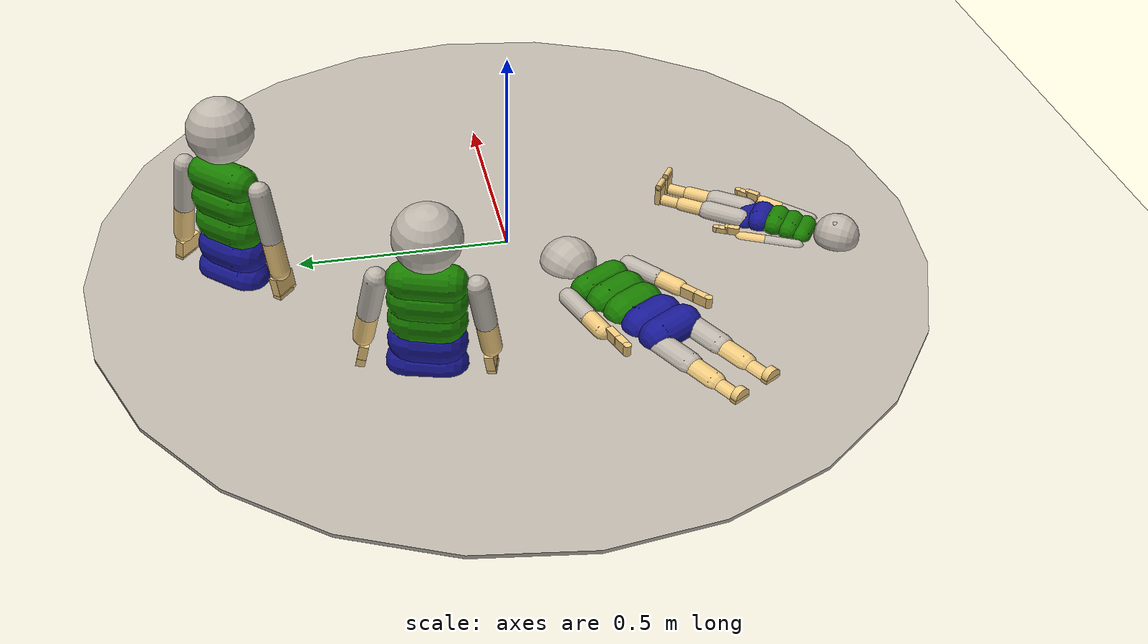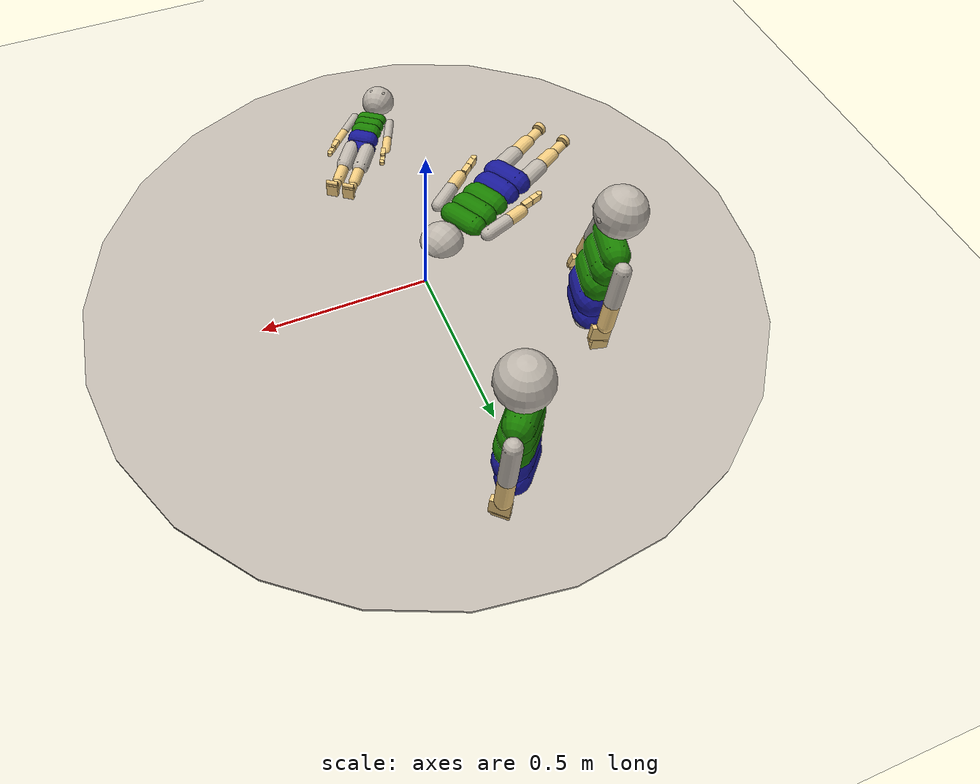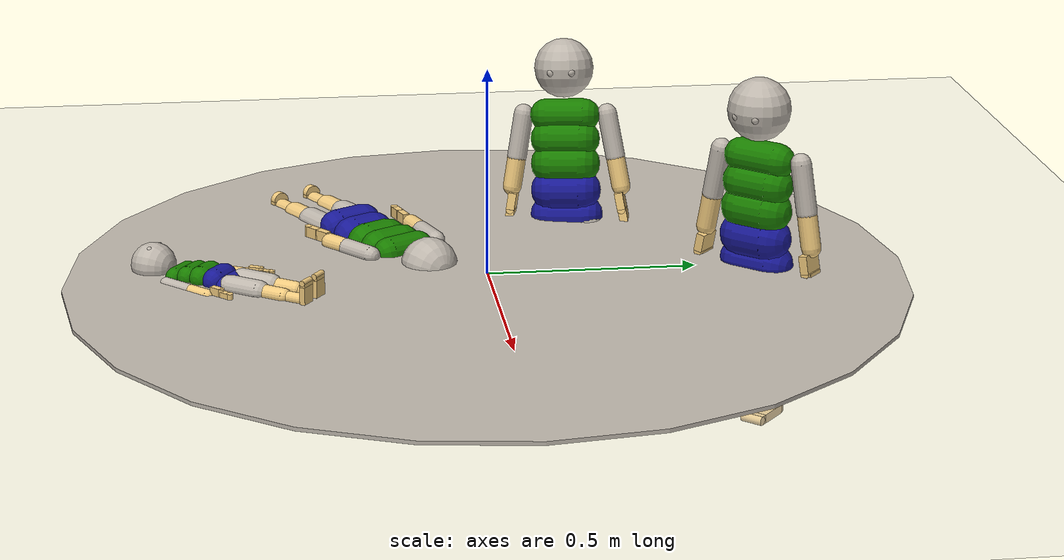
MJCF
<mujoco model="MIMo">

    <compiler inertiafromgeom="true" angle="degree" />
    <option timestep="0.005" iterations="50" tolerance="1e-10" solver="Newton" jacobian="dense" cone="elliptic" impratio="1.0" />
    <size nconmax="1000" njmax="5000" nstack="10000000" />

    <visual>
        <map force="0.1" fogend="10" shadowclip="3" />
        <headlight active="0" />
        <quality shadowsize="0" />
		<global offwidth="1920" offheight="1080"/>
    </visual>

    <default>
		<default class="mimo">
        	<joint limited="true" damping=".1" stiffness=".1" armature="0.001" solimplimit="0.98 0.99 0.001 .5 1" solreflimit="0.02 1" />
        	<geom condim="3" material="skin" friction="1 0.005 0.0002" solimp="0.95 0.99 0.001 0.5 1" solref="0.005 1" />
        	<motor ctrlrange="-1 1" ctrllimited="true" forcelimited="true" />
		</default>
    </default>

    <asset>

		<!-- MIMo. -->
		<texture name="tex_head_default" type="cube" fileright="tex/head_front.png" fileleft="tex/head_back.png" fileup="tex/head_left.png" filedown="tex/head_right.png" filefront="tex/head_top.png" rgb1="0.95 .8 .5" />
		<texture name="tex_head_happy" type="cube" fileright="tex/head_front_happy.png" fileleft="tex/head_back.png" fileup="tex/head_left.png" filedown="tex/head_right.png" filefront="tex/head_top.png" rgb1="0.95 .8 .5" />
		<texture name="tex_head_sad" type="cube" fileright="tex/head_front_sad.png" fileleft="tex/head_back.png" fileup="tex/head_left.png" filedown="tex/head_right.png" filefront="tex/head_top.png" rgb1="0.95 .8 .5" />
		<texture name="tex_head_surprised" type="cube" fileright="tex/head_front_surprised.png" fileleft="tex/head_back.png" fileup="tex/head_left.png" filedown="tex/head_right.png" filefront="tex/head_top.png" rgb1="0.95 .8 .5" />
		<texture name="tex_head_angry" type="cube" fileright="tex/head_front_angry.png" fileleft="tex/head_back.png" fileup="tex/head_left.png" filedown="tex/head_right.png" filefront="tex/head_top.png" rgb1="0.95 .8 .5" />
		<texture name="tex_head_disgusted" type="cube" fileright="tex/head_front_disgusted.png" fileleft="tex/head_back.png" fileup="tex/head_left.png" filedown="tex/head_right.png" filefront="tex/head_top.png" rgb1="0.95 .8 .5" />
		<texture name="tex_head_scared" type="cube" fileright="tex/head_front_scared.png" fileleft="tex/head_back.png" fileup="tex/head_left.png" filedown="tex/head_right.png" filefront="tex/head_top.png" rgb1="0.95 .8 .5" />
		<texture name="tex_top_sleeve" type="cube" fileright="tex/sleeve_right.png" fileleft="tex/sleeve_left.png" fileup="tex/sleeve_up.png" filedown="tex/sleeve_down.png" filefront="tex/sleeve_front.png" fileback="tex/sleeve_back.png" rgb1="0.95 .8 .5" />
		<texture name="tex_pants_leg" type="cube" fileright="tex/leg_right.png" fileleft="tex/leg_left.png" fileup="tex/leg_up.png" filedown="tex/leg_down.png" filefront="tex/leg_front.png" fileback="tex/leg_back.png" rgb1="0.95 .8 .5" />
		<texture name="tex_eye_left" type="cube" fileright="tex/eye_pupil_left.png" rgb1="1 1 1" />
		<texture name="tex_eye_right" type="cube" fileright="tex/eye_pupil_right.png" rgb1="1 1 1" />
		<material name="skin" rgba="0.95 0.8 0.5 1" specular=".15" shininess=".7" />
		<material name="buttons" rgba=".05 .05 .05 1" specular=".9" shininess=".9" />
		<material name="head" texture="tex_head_default" texuniform="true" specular=".0" shininess=".0" />
		<material name="head_happy" texture="tex_head_happy" texuniform="true" specular=".0" shininess=".0" />
		<material name="head_sad" texture="tex_head_sad" texuniform="true" specular=".0" shininess=".0" />
		<material name="head_surprised" texture="tex_head_surprised" texuniform="true" specular=".0" shininess=".0" />
		<material name="head_angry" texture="tex_head_angry" texuniform="true" specular=".0" shininess=".0" />
		<material name="head_scared" texture="tex_head_scared" texuniform="true" specular=".0" shininess=".0" />
		<material name="top_up" rgba=".1 .5 0.0 1" specular=".0" shininess=".0" />
		<material name="top_middle" rgba=".1 .5 0.0 1" specular=".0" shininess=".0" />
		<material name="top_down" rgba=".1 .5 0.0 1" specular=".0" shininess=".0" />
		<material name="top_sleeve" texture="tex_top_sleeve" texuniform="true" specular=".0" shininess=".0" />
		<material name="pants_up" rgba="0.1 0.1 0.6 1" specular=".0" shininess=".0" />
		<material name="pants_down" rgba="0.1 0.1 0.6 1" specular=".0" shininess=".0" />
		<material name="pants_leg" texture="tex_pants_leg" texuniform="true" specular=".0" shininess=".0" />
		<material name="eye_left" texture="tex_eye_left" texuniform="true" specular=".0" shininess=".0" />
		<material name="eye_right" texture="tex_eye_right" texuniform="true" specular=".0" shininess=".0" />

		<!-- Colors. -->
		<material name="red" rgba=".79 .25 .32 1" shininess="0.99" reflectance="0"/>
		<material name="green" rgba="0 0.8 0 1" specular=".2" shininess=".8"/>
		<material name="blue" rgba="0.15 0.15 1 1" specular=".2" shininess=".8"/>
		<material name="yellow" rgba="0.7 0.7 0 1" specular=".2" shininess=".8"/>
		<material name="orange" rgba="0.9 0.4 0 1" specular=".2" shininess=".8"/>

		<!-- Floor. -->
		<texture name="texfloor" builtin="checker" height="100" width="100" rgb1="0.9 0.9 0.9" rgb2="0.9 0.9 0.9" type="2d" mark="edge" markrgb="0.7 0.7 0.7"/>
        <material name="matfloor" reflectance="0" shininess="0" specular="0" texrepeat="25 25" texture="texfloor"/>

		<!-- Rug. -->
        <texture name="texrug" type="cube" filefront="tex/base_rug.png" rgb1="0.6 0.6 0.6" />
        <material name="matrug" reflectance="0" shininess=".1" specular="0.5" texrepeat="25 25" texture="texrug" />

		<!-- Misc. -->
		<texture type="skybox" builtin="gradient" rgb1=".8 .8 .8" rgb2=".9 .9 .9" width="100" height="100"/>
		<material name="mattransparent" reflectance="0" shininess="0" specular="0" rgba="1 1 1 0"/>

    </asset>

    <include file="mimo_ages/MIMo_meta_0.xml" />
    <include file="mimo_ages/MIMo_meta_6.xml" />
    <include file="mimo_ages/MIMo_meta_18.xml" />
    <include file="mimo_ages/MIMo_meta_24.xml" />

    <worldbody>

		<camera name="main" pos="2 0 1.8" euler="0 55 90" fovy="26"/>

        <light pos="0 0 5" dir="0 0 -1" directional="true" ambient="0.2 0.2 0.2" diffuse="0.1 0.1 0.1" specular="0 0 0" />
        <light pos="2 2 2" dir="-1 -1 -1" directional="true" ambient="0.05 0.05 0.05" diffuse="0.2 0.2 0.2" specular="0.3 0.3 0.3" castshadow="false" />
        <light pos="2 -2 2" dir="-1 1 -1" directional="true" ambient="0.05 0.05 0.05" diffuse="0.2 0.2 0.2" specular="0.3 0.3 0.3" castshadow="false" />
        <light pos="-2 2 2" dir="1 -1 -1" directional="true" ambient="0.05 0.05 0.05" diffuse="0.2 0.2 0.2" specular="0.3 0.3 0.3" castshadow="false" />
        <light pos="-2 -2 2" dir="1 1 -1" directional="true" ambient="0.05 0.05 0.05" diffuse="0.2 0.2 0.2" specular="0.3 0.3 0.3" castshadow="false" />

        <geom name="transparent" size="2 2 .0001" type="plane"  material="mattransparent" pos="0 0 0" conaffinity="1"/>
        <geom name="floor" size="3 3 .01" type="plane"  material="matfloor" pos="0 0 -0.01" conaffinity="1"/>
        <geom name="rug" size="1 .0045" material="matrug" type="cylinder" pos="0 0 -0.005" euler="0 0 0" conaffinity="1"/>

        <body name="mimo_location_0" pos="0 -0.6 0" euler="90 -35 90">
			<freejoint/>
			<include file="mimo_ages/MIMo_model_0.xml" />
		</body>

		<body name="mimo_location_6" pos="-0.4 -0.3 0" euler="90 120 -90">
			<freejoint/>
			<include file="mimo_ages/MIMo_model_6.xml" />
			<geom type="box" material="red" size="0.03 0.03 0.03" pos="0 0 0.35" density="200"/>
		</body>

		<body name="mimo_location_18" pos="-0.4 0.25 0" euler="0 -10 -15">
			<freejoint/>
			<include file="mimo_ages/MIMo_model_18.xml" />
		</body>

		<body name="mimo_location_24" pos="0 0.65 0" euler="0 0 -42">
			<freejoint/>
			<include file="mimo_ages/MIMo_model_24.xml" />
		</body>

	</worldbody>

</mujoco>

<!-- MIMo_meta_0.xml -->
<mujoco model="MIMo">

	<size nuser_actuator="3" />

	<contact>
		<pair geom1="lb_0" geom2="ub1_0" condim="1" />
		<exclude body1="left_eye_0" body2="upper_body_0" />
		<exclude body1="right_eye_0" body2="upper_body_0" />
	</contact>

	<tendon>
		<fixed class="mimo" name="hip_bend_0" limited="true" range="-.01 .01">
			<joint joint="robot:hip_bend1_0" coef="1" />
			<joint joint="robot:hip_bend2_0" coef="-1" />
		</fixed>
		<fixed class="mimo" name="hip_rotation_0" limited="true" range="-.01 .01">
			<joint joint="robot:hip_rot1_0" coef="1" />
			<joint joint="robot:hip_rot2_0" coef="-1" />
		</fixed>
		<fixed class="mimo" name="hip_lean_0" limited="true" range="-.01 .01">
			<joint joint="robot:hip_lean1_0" coef="1" />
			<joint joint="robot:hip_lean2_0" coef="-.5" />
		</fixed>
		<fixed class="mimo" name="head_limits1_0" limited="true" range="-2.1 2.1">
			<joint joint="robot:head_swivel_0" coef="1" />
			<joint joint="robot:head_tilt_side_0" coef="1" />
		</fixed>
		<fixed class="mimo" name="head_limits2_0" limited="true" range="-2.1 2.1">
			<joint joint="robot:head_tilt_0" coef="1" />
			<joint joint="robot:head_tilt_side_0" coef="1" />
		</fixed>
		<fixed class="mimo" name="head_limits3_0" limited="true" range="-2.1 2.1">
			<joint joint="robot:head_swivel_0" coef="1" />
			<joint joint="robot:head_tilt_0" coef="1" />
		</fixed>
		<fixed class="mimo" name="head_limits1_sym_0" limited="true" range="-2.1 2.1">
			<joint joint="robot:head_swivel_0" coef="1" />
			<joint joint="robot:head_tilt_side_0" coef="-1" />
		</fixed>
		<fixed class="mimo" name="head_limits2_sym_0" limited="true" range="-2.1 2.1">
			<joint joint="robot:head_tilt_0" coef="1" />
			<joint joint="robot:head_tilt_side_0" coef="-1" />
		</fixed>
		<fixed class="mimo" name="head_limits3_sym_0" limited="true" range="-2.1 2.1">
			<joint joint="robot:head_swivel_0" coef="1" />
			<joint joint="robot:head_tilt_0" coef="-1" />
		</fixed>
	</tendon>

	<sensor>
		<accelerometer name="vestibular_acc_0" site="vestibular_0" />
		<gyro name="vestibular_gyro_0" site="vestibular_0" />

		<torque name="proprio:neck_0" site="torque_neck_0" />
		<torque name="proprio:left_eye_0" site="torque_left_eye_0" />
		<torque name="proprio:right_eye_0" site="torque_right_eye_0" />

		<torque name="proprio:trunk_upper_0" site="torque_ub_0" />
		<torque name="proprio:trunk_lower_0" site="torque_lb_0" />

		<torque name="proprio:right_shoulder_0" site="torque_right_shoulder_0" />
		<torque name="proprio:right_elbow_0" site="torque_right_elbow_0" />
		<torque name="proprio:right_wrist_0" site="torque_right_wrist_0" />
		<torque name="proprio:right_fingers_0" site="torque_right_fingers_0" />

		<torque name="proprio:left_shoulder_0" site="torque_left_shoulder_0" />
		<torque name="proprio:left_elbow_0" site="torque_left_elbow_0" />
		<torque name="proprio:left_wrist_0" site="torque_left_wrist_0" />
		<torque name="proprio:left_fingers_0" site="torque_left_fingers_0" />

		<torque name="proprio:right_hip_0" site="torque_right_hip_0" />
		<torque name="proprio:right_knee_0" site="torque_right_knee_0" />
		<torque name="proprio:right_ankle_0" site="torque_right_ankle_0" />
		<torque name="proprio:right_toes_0" site="torque_right_toes_0" />

		<torque name="proprio:left_hip_0" site="torque_left_hip_0" />
		<torque name="proprio:left_knee_0" site="torque_left_knee_0" />
		<torque name="proprio:left_ankle_0" site="torque_left_ankle_0" />
		<torque name="proprio:left_toes_0" site="torque_left_toes_0" />
	</sensor>

    <actuator>
		<motor class="mimo" name="act:hip_bend_0" joint="robot:hip_bend1_0" gear="1.9656450510895171" forcerange="-1 .765" user=".8574 32.93 22.97" />
		<motor class="mimo" name="act:hip_twist_0" joint="robot:hip_rot1_0" gear="0.6744131886063277" forcerange="-1 1" user="1.699 8.136 8.136" />
		<motor class="mimo" name="act:hip_lean_0" joint="robot:hip_lean1_0" gear="1.346968489640737" forcerange="-1 1" user="1.278 1.264 1.264" />

		<motor class="mimo" name="act:head_swivel_0" joint="robot:head_swivel_0" gear="0.7170287341631916" forcerange="-1 1" user=".6665 24.87 24.87" />
		<motor class="mimo" name="act:head_tilt_0" joint="robot:head_tilt_0" gear="1.3145526792991844" forcerange="-1 .55" user=".9338 31.39 16.86" />
		<motor class="mimo" name="act:head_tilt_side_0" joint="robot:head_tilt_side_0" gear="0.7170287341631916" forcerange="-1 1" user="1.068 15.69 15.69" />

		<motor class="mimo" name="act:left_eye_horizontal_0" joint="robot:left_eye_horizontal_0" gear="0.002151086202489574" forcerange="-1 1" user="5.110 .03025 .03025" />
		<motor class="mimo" name="act:left_eye_vertical_0" joint="robot:left_eye_vertical_0" gear="0.002151086202489574" forcerange="-1 1" user="6.179 .02619 .02771" />
		<motor class="mimo" name="act:left_eye_torsional_0" joint="robot:left_eye_torsional_0" gear="0.0014738923980021155" forcerange="-1 1" user="25.03 .003686 .003686" />
		<motor class="mimo" name="act:right_eye_horizontal_0" joint="robot:right_eye_horizontal_0" gear="0.002151086202489574" forcerange="-1 1" user="5.110 .03025 .03025" />
		<motor class="mimo" name="act:right_eye_vertical_0" joint="robot:right_eye_vertical_0" gear="0.002151086202489574" forcerange="-1 1" user="6.179 .02619 .02771" />
		<motor class="mimo" name="act:right_eye_torsional_0" joint="robot:right_eye_torsional_0" gear="0.0014738923980021155" forcerange="-1 1" user="25.03 .003686 .003686" />

		<motor class="mimo" name="act:right_shoulder_horizontal_0" joint="robot:right_shoulder_horizontal_0" gear="0.4993398493928391" forcerange="-1 1" user="1.811 18.80 15.30" />
		<motor class="mimo" name="act:right_shoulder_abduction_0" joint="robot:right_shoulder_ad_ab_0" gear="1.1096441097618646" forcerange="-.6875 1" user=".8793 44.17 69.23" />
		<motor class="mimo" name="act:right_shoulder_internal_0" joint="robot:right_shoulder_rotation_0" gear="0.6935275686011654" forcerange="-1 .64" user="1.498 25.09 17.10" />
		<motor class="mimo" name="act:right_elbow_0" joint="robot:right_elbow_0" gear="1.1132438625653438" forcerange="-1 .83" user="1.566 35.43 27.04" />
		<motor class="mimo" name="act:right_wrist_rotation_0" joint="robot:right_hand1_0" gear="0.248617332016975" forcerange="-1 1" user="1.513 7.842 7.842" />
		<motor class="mimo" name="act:right_wrist_flexion_0" joint="robot:right_hand2_0" gear="0.44040784528721294" forcerange="-1 .57" user="1.455 13.66 7.874" />
		<motor class="mimo" name="act:right_wrist_ulnar_0" joint="robot:right_hand3_0" gear="0.3374092363087518" forcerange="-.87 1" user="2.254 5.155 6.021" />
		<motor class="mimo" name="act:right_fingers_0" joint="robot:right_fingers_0" gear="0.24506565584530396" forcerange="-1 .33" user="3.019 6.854 2.551" />

		<motor class="mimo" name="act:left_shoulder_horizontal_0" joint="robot:left_shoulder_horizontal_0" gear="0.4993398493928391" forcerange="-1 1" user="1.811 18.80 15.30" />
		<motor class="mimo" name="act:left_shoulder_abduction_0" joint="robot:left_shoulder_ad_ab_0" gear="1.1096441097618646" forcerange="-.6875 1" user=".8793 44.17 69.23" />
		<motor class="mimo" name="act:left_shoulder_internal_0" joint="robot:left_shoulder_rotation_0" gear="0.6935275686011654" forcerange="-1 .64" user="1.498 25.09 17.10" />
		<motor class="mimo" name="act:left_elbow_0" joint="robot:left_elbow_0" gear="1.1132438625653438" forcerange="-1 .83" user="1.566 35.43 27.04" />
		<motor class="mimo" name="act:left_wrist_rotation_0" joint="robot:left_hand1_0" gear="0.248617332016975" forcerange="-1 1" user="1.513 7.842 7.842" />
		<motor class="mimo" name="act:left_wrist_flexion_0" joint="robot:left_hand2_0" gear="0.44040784528721294" forcerange="-1 .57" user="1.455 13.66 7.874" />
		<motor class="mimo" name="act:left_wrist_ulnar_0" joint="robot:left_hand3_0" gear="0.3374092363087518" forcerange="-.87 1" user="2.254 5.155 6.021" />
		<motor class="mimo" name="act:left_fingers_0" joint="robot:left_fingers_0" gear="0.24506565584530396" forcerange="-1 .33" user="3.019 6.854 2.551" />

		<motor class="mimo" name="act:right_hip_flex_0" joint="robot:right_hip1_0" gear="2.6261705346445345" forcerange="-1 1" user="1.083 71.25 92.49" />
		<motor class="mimo" name="act:right_hip_abduction_0" joint="robot:right_hip2_0" gear="2.048413017022737" forcerange="-1 1" user="1.488 24.81 29.20" />
		<motor class="mimo" name="act:right_hip_rotation_0" joint="robot:right_hip3_0" gear="1.1620804615802063" forcerange="-.75 1" user="1.860 12.32 15.78" />
		<motor class="mimo" name="act:right_knee_0" joint="robot:right_knee_0" gear="2.8438505152820945" forcerange="-.65 1" user="1.450 63.16 89.27" />
		<motor class="mimo" name="act:right_foot_flexion_0" joint="robot:right_foot1_0" gear="1.2797273955413133" forcerange="-1 .5" user="1.430 21.34 11.87" />
		<motor class="mimo" name="act:right_foot_inversion_0" joint="robot:right_foot2_0" gear="0.3927205764095036" forcerange="-.91 1" user="1.988 4.184 4.645" />
		<motor class="mimo" name="act:right_foot_rotation_0" joint="robot:right_foot3_0" gear="0.40626266525121063" forcerange="-1 1" user="2.688 3.868 3.625" />
		<motor class="mimo" name="act:right_toes_0" joint="robot:right_toes_0" gear="0.11172223294408291" forcerange="-1 .3" user="1.290 2.947 .8440" />

		<motor class="mimo" name="act:left_hip_flex_0" joint="robot:left_hip1_0" gear="2.6261705346445345" forcerange="-1 1" user="1.083 71.25 92.49" />
		<motor class="mimo" name="act:left_hip_abduction_0" joint="robot:left_hip2_0" gear="2.048413017022737" forcerange="-1 1" user="1.488 24.81 29.20" />
		<motor class="mimo" name="act:left_hip_rotation_0" joint="robot:left_hip3_0" gear="1.1620804615802063" forcerange="-.75 1" user="1.860 12.32 15.78" />
		<motor class="mimo" name="act:left_knee_0" joint="robot:left_knee_0" gear="2.8438505152820945" forcerange="-.65 1" user="1.450 63.16 89.27" />
		<motor class="mimo" name="act:left_foot_flexion_0" joint="robot:left_foot1_0" gear="1.2797273955413133" forcerange="-1 .5" user="1.430 21.34 11.87" />
		<motor class="mimo" name="act:left_foot_inversion_0" joint="robot:left_foot2_0" gear="0.3927205764095036" forcerange="-.91 1" user="1.988 4.184 4.645" />
		<motor class="mimo" name="act:left_foot_rotation_0" joint="robot:left_foot3_0" gear="0.40626266525121063" forcerange="-1 1" user="2.688 3.868 3.625" />
		<motor class="mimo" name="act:left_toes_0" joint="robot:left_toes_0" gear="0.11172223294408291" forcerange="-1 .3" user="1.290 2.947 .8440" />
	</actuator>

	<equality>
		<joint name="robot:hip_lean1_0" joint1="robot:hip_lean1_0" active="false" polycoef="0 1 0 0 0" />
		<joint name="robot:hip_rot1_0" joint1="robot:hip_rot1_0" active="false" polycoef="0 1 0 0 0" />
		<joint name="robot:hip_bend1_0" joint1="robot:hip_bend1_0" active="false" polycoef="0 1 0 0 0" />
		<joint name="robot:hip_lean2_0" joint1="robot:hip_lean2_0" active="false" polycoef="0 1 0 0 0" />
		<joint name="robot:hip_rot2_0" joint1="robot:hip_rot2_0" active="false" polycoef="0 1 0 0 0" />
		<joint name="robot:hip_bend2_0" joint1="robot:hip_bend2_0" active="false" polycoef="0 1 0 0 0" />
		<joint name="robot:head_swivel_0" joint1="robot:head_swivel_0" active="false" polycoef="0 1 0 0 0" />
		<joint name="robot:head_tilt_0" joint1="robot:head_tilt_0" active="false" polycoef="0 1 0 0 0" />
		<joint name="robot:head_tilt_side_0" joint1="robot:head_tilt_side_0" active="false" polycoef="0 1 0 0 0" />
		<joint name="robot:left_eye_horizontal_0" joint1="robot:left_eye_horizontal_0" active="false" polycoef="0 1 0 0 0" />
		<joint name="robot:left_eye_vertical_0" joint1="robot:left_eye_vertical_0" active="false" polycoef="0 1 0 0 0" />
		<joint name="robot:left_eye_torsional_0" joint1="robot:left_eye_torsional_0" active="false" polycoef="0 1 0 0 0" />
		<joint name="robot:right_eye_horizontal_0" joint1="robot:right_eye_horizontal_0" active="false" polycoef="0 1 0 0 0" />
		<joint name="robot:right_eye_vertical_0" joint1="robot:right_eye_vertical_0" active="false" polycoef="0 1 0 0 0" />
		<joint name="robot:right_eye_torsional_0" joint1="robot:right_eye_torsional_0" active="false" polycoef="0 1 0 0 0" />
		<joint name="robot:right_shoulder_horizontal_0" joint1="robot:right_shoulder_horizontal_0" active="false" polycoef="0 1 0 0 0" />
		<joint name="robot:right_shoulder_ad_ab_0" joint1="robot:right_shoulder_ad_ab_0" active="false" polycoef="0 1 0 0 0" />
		<joint name="robot:right_shoulder_rotation_0" joint1="robot:right_shoulder_rotation_0" active="false" polycoef="0 1 0 0 0" />
		<joint name="robot:right_elbow_0" joint1="robot:right_elbow_0" active="false" polycoef="0 1 0 0 0" />
		<joint name="robot:right_hand1_0" joint1="robot:right_hand1_0" active="false" polycoef="0 1 0 0 0" />
		<joint name="robot:right_hand2_0" joint1="robot:right_hand2_0" active="false" polycoef="0 1 0 0 0" />
		<joint name="robot:right_hand3_0" joint1="robot:right_hand3_0" active="false" polycoef="0 1 0 0 0" />
		<joint name="robot:right_fingers_0" joint1="robot:right_fingers_0" active="false" polycoef="0 1 0 0 0" />
		<joint name="robot:left_shoulder_horizontal_0" joint1="robot:left_shoulder_horizontal_0" active="false" polycoef="0 1 0 0 0" />
		<joint name="robot:left_shoulder_ad_ab_0" joint1="robot:left_shoulder_ad_ab_0" active="false" polycoef="0 1 0 0 0" />
		<joint name="robot:left_shoulder_rotation_0" joint1="robot:left_shoulder_rotation_0" active="false" polycoef="0 1 0 0 0" />
		<joint name="robot:left_elbow_0" joint1="robot:left_elbow_0" active="false" polycoef="0 1 0 0 0" />
		<joint name="robot:left_hand1_0" joint1="robot:left_hand1_0" active="false" polycoef="0 1 0 0 0" />
		<joint name="robot:left_hand2_0" joint1="robot:left_hand2_0" active="false" polycoef="0 1 0 0 0" />
		<joint name="robot:left_hand3_0" joint1="robot:left_hand3_0" active="false" polycoef="0 1 0 0 0" />
		<joint name="robot:left_fingers_0" joint1="robot:left_fingers_0" active="false" polycoef="0 1 0 0 0" />
		<joint name="robot:right_hip1_0" joint1="robot:right_hip1_0" active="false" polycoef="0 1 0 0 0" />
		<joint name="robot:right_hip2_0" joint1="robot:right_hip2_0" active="false" polycoef="0 1 0 0 0" />
		<joint name="robot:right_hip3_0" joint1="robot:right_hip3_0" active="false" polycoef="0 1 0 0 0" />
		<joint name="robot:right_knee_0" joint1="robot:right_knee_0" active="false" polycoef="0 1 0 0 0" />
		<joint name="robot:right_foot1_0" joint1="robot:right_foot1_0" active="false" polycoef="0 1 0 0 0" />
		<joint name="robot:right_foot2_0" joint1="robot:right_foot2_0" active="false" polycoef="0 1 0 0 0" />
		<joint name="robot:right_foot3_0" joint1="robot:right_foot3_0" active="false" polycoef="0 1 0 0 0" />
		<joint name="robot:right_toes_0" joint1="robot:right_toes_0" active="false" polycoef="0 1 0 0 0" />
		<joint name="robot:left_hip1_0" joint1="robot:left_hip1_0" active="false" polycoef="0 1 0 0 0" />
		<joint name="robot:left_hip2_0" joint1="robot:left_hip2_0" active="false" polycoef="0 1 0 0 0" />
		<joint name="robot:left_hip3_0" joint1="robot:left_hip3_0" active="false" polycoef="0 1 0 0 0" />
		<joint name="robot:left_knee_0" joint1="robot:left_knee_0" active="false" polycoef="0 1 0 0 0" />
		<joint name="robot:left_foot1_0" joint1="robot:left_foot1_0" active="false" polycoef="0 1 0 0 0" />
		<joint name="robot:left_foot2_0" joint1="robot:left_foot2_0" active="false" polycoef="0 1 0 0 0" />
		<joint name="robot:left_foot3_0" joint1="robot:left_foot3_0" active="false" polycoef="0 1 0 0 0" />
		<joint name="robot:left_toes_0" joint1="robot:left_toes_0" active="false" polycoef="0 1 0 0 0" />
	</equality>

</mujoco>

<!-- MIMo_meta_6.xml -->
<mujoco model="MIMo">

	<size nuser_actuator="3" />

	<contact>
		<pair geom1="lb_6" geom2="ub1_6" condim="1" />
		<exclude body1="left_eye_6" body2="upper_body_6" />
		<exclude body1="right_eye_6" body2="upper_body_6" />
	</contact>

	<tendon>
		<fixed class="mimo" name="hip_bend_6" limited="true" range="-.01 .01">
			<joint joint="robot:hip_bend1_6" coef="1" />
			<joint joint="robot:hip_bend2_6" coef="-1" />
		</fixed>
		<fixed class="mimo" name="hip_rotation_6" limited="true" range="-.01 .01">
			<joint joint="robot:hip_rot1_6" coef="1" />
			<joint joint="robot:hip_rot2_6" coef="-1" />
		</fixed>
		<fixed class="mimo" name="hip_lean_6" limited="true" range="-.01 .01">
			<joint joint="robot:hip_lean1_6" coef="1" />
			<joint joint="robot:hip_lean2_6" coef="-.5" />
		</fixed>
		<fixed class="mimo" name="head_limits1_6" limited="true" range="-2.1 2.1">
			<joint joint="robot:head_swivel_6" coef="1" />
			<joint joint="robot:head_tilt_side_6" coef="1" />
		</fixed>
		<fixed class="mimo" name="head_limits2_6" limited="true" range="-2.1 2.1">
			<joint joint="robot:head_tilt_6" coef="1" />
			<joint joint="robot:head_tilt_side_6" coef="1" />
		</fixed>
		<fixed class="mimo" name="head_limits3_6" limited="true" range="-2.1 2.1">
			<joint joint="robot:head_swivel_6" coef="1" />
			<joint joint="robot:head_tilt_6" coef="1" />
		</fixed>
		<fixed class="mimo" name="head_limits1_sym_6" limited="true" range="-2.1 2.1">
			<joint joint="robot:head_swivel_6" coef="1" />
			<joint joint="robot:head_tilt_side_6" coef="-1" />
		</fixed>
		<fixed class="mimo" name="head_limits2_sym_6" limited="true" range="-2.1 2.1">
			<joint joint="robot:head_tilt_6" coef="1" />
			<joint joint="robot:head_tilt_side_6" coef="-1" />
		</fixed>
		<fixed class="mimo" name="head_limits3_sym_6" limited="true" range="-2.1 2.1">
			<joint joint="robot:head_swivel_6" coef="1" />
			<joint joint="robot:head_tilt_6" coef="-1" />
		</fixed>
	</tendon>

	<sensor>
		<accelerometer name="vestibular_acc_6" site="vestibular_6" />
		<gyro name="vestibular_gyro_6" site="vestibular_6" />

		<torque name="proprio:neck_6" site="torque_neck_6" />
		<torque name="proprio:left_eye_6" site="torque_left_eye_6" />
		<torque name="proprio:right_eye_6" site="torque_right_eye_6" />

		<torque name="proprio:trunk_upper_6" site="torque_ub_6" />
		<torque name="proprio:trunk_lower_6" site="torque_lb_6" />

		<torque name="proprio:right_shoulder_6" site="torque_right_shoulder_6" />
		<torque name="proprio:right_elbow_6" site="torque_right_elbow_6" />
		<torque name="proprio:right_wrist_6" site="torque_right_wrist_6" />
		<torque name="proprio:right_fingers_6" site="torque_right_fingers_6" />

		<torque name="proprio:left_shoulder_6" site="torque_left_shoulder_6" />
		<torque name="proprio:left_elbow_6" site="torque_left_elbow_6" />
		<torque name="proprio:left_wrist_6" site="torque_left_wrist_6" />
		<torque name="proprio:left_fingers_6" site="torque_left_fingers_6" />

		<torque name="proprio:right_hip_6" site="torque_right_hip_6" />
		<torque name="proprio:right_knee_6" site="torque_right_knee_6" />
		<torque name="proprio:right_ankle_6" site="torque_right_ankle_6" />
		<torque name="proprio:right_toes_6" site="torque_right_toes_6" />

		<torque name="proprio:left_hip_6" site="torque_left_hip_6" />
		<torque name="proprio:left_knee_6" site="torque_left_knee_6" />
		<torque name="proprio:left_ankle_6" site="torque_left_ankle_6" />
		<torque name="proprio:left_toes_6" site="torque_left_toes_6" />
	</sensor>

    <actuator>
		<motor class="mimo" name="act:hip_bend_6" joint="robot:hip_bend1_6" gear="8.008859468900091" forcerange="-1 .765" user=".8574 32.93 22.97" />
		<motor class="mimo" name="act:hip_twist_6" joint="robot:hip_rot1_6" gear="2.747841197741714" forcerange="-1 1" user="1.699 8.136 8.136" />
		<motor class="mimo" name="act:hip_lean_6" joint="robot:hip_lean1_6" gear="5.488112585021329" forcerange="-1 1" user="1.278 1.264 1.264" />

		<motor class="mimo" name="act:head_swivel_6" joint="robot:head_swivel_6" gear="1.4635794390634198" forcerange="-1 1" user=".6665 24.87 24.87" />
		<motor class="mimo" name="act:head_tilt_6" joint="robot:head_tilt_6" gear="2.683228971616269" forcerange="-1 .55" user=".9338 31.39 16.86" />
		<motor class="mimo" name="act:head_tilt_side_6" joint="robot:head_tilt_side_6" gear="1.4635794390634198" forcerange="-1 1" user="1.068 15.69 15.69" />

		<motor class="mimo" name="act:left_eye_horizontal_6" joint="robot:left_eye_horizontal_6" gear="0.004390738317190259" forcerange="-1 1" user="5.110 .03025 .03025" />
		<motor class="mimo" name="act:left_eye_vertical_6" joint="robot:left_eye_vertical_6" gear="0.004390738317190259" forcerange="-1 1" user="6.179 .02619 .02771" />
		<motor class="mimo" name="act:left_eye_torsional_6" joint="robot:left_eye_torsional_6" gear="0.003008468846963696" forcerange="-1 1" user="25.03 .003686 .003686" />
		<motor class="mimo" name="act:right_eye_horizontal_6" joint="robot:right_eye_horizontal_6" gear="0.004390738317190259" forcerange="-1 1" user="5.110 .03025 .03025" />
		<motor class="mimo" name="act:right_eye_vertical_6" joint="robot:right_eye_vertical_6" gear="0.004390738317190259" forcerange="-1 1" user="6.179 .02619 .02771" />
		<motor class="mimo" name="act:right_eye_torsional_6" joint="robot:right_eye_torsional_6" gear="0.003008468846963696" forcerange="-1 1" user="25.03 .003686 .003686" />

		<motor class="mimo" name="act:right_shoulder_horizontal_6" joint="robot:right_shoulder_horizontal_6" gear="1.3105476087686423" forcerange="-1 1" user="1.811 18.80 15.30" />
		<motor class="mimo" name="act:right_shoulder_abduction_6" joint="robot:right_shoulder_ad_ab_6" gear="2.912328019485872" forcerange="-.6875 1" user=".8793 44.17 69.23" />
		<motor class="mimo" name="act:right_shoulder_internal_6" joint="robot:right_shoulder_rotation_6" gear="1.8202050121786701" forcerange="-1 .64" user="1.498 25.09 17.10" />
		<motor class="mimo" name="act:right_elbow_6" joint="robot:right_elbow_6" gear="2.6251716128567835" forcerange="-1 .83" user="1.566 35.43 27.04" />
		<motor class="mimo" name="act:right_wrist_rotation_6" joint="robot:right_hand1_6" gear="0.47447721265680715" forcerange="-1 1" user="1.513 7.842 7.842" />
		<motor class="mimo" name="act:right_wrist_flexion_6" joint="robot:right_hand2_6" gear="0.8405024909920585" forcerange="-1 .57" user="1.455 13.66 7.874" />
		<motor class="mimo" name="act:right_wrist_ulnar_6" joint="robot:right_hand3_6" gear="0.6439333600342383" forcerange="-.87 1" user="2.254 5.155 6.021" />
		<motor class="mimo" name="act:right_fingers_6" joint="robot:right_fingers_6" gear="0.46769896676170997" forcerange="-1 .33" user="3.019 6.854 2.551" />

		<motor class="mimo" name="act:left_shoulder_horizontal_6" joint="robot:left_shoulder_horizontal_6" gear="1.3105476087686423" forcerange="-1 1" user="1.811 18.80 15.30" />
		<motor class="mimo" name="act:left_shoulder_abduction_6" joint="robot:left_shoulder_ad_ab_6" gear="2.912328019485872" forcerange="-.6875 1" user=".8793 44.17 69.23" />
		<motor class="mimo" name="act:left_shoulder_internal_6" joint="robot:left_shoulder_rotation_6" gear="1.8202050121786701" forcerange="-1 .64" user="1.498 25.09 17.10" />
		<motor class="mimo" name="act:left_elbow_6" joint="robot:left_elbow_6" gear="2.6251716128567835" forcerange="-1 .83" user="1.566 35.43 27.04" />
		<motor class="mimo" name="act:left_wrist_rotation_6" joint="robot:left_hand1_6" gear="0.47447721265680715" forcerange="-1 1" user="1.513 7.842 7.842" />
		<motor class="mimo" name="act:left_wrist_flexion_6" joint="robot:left_hand2_6" gear="0.8405024909920585" forcerange="-1 .57" user="1.455 13.66 7.874" />
		<motor class="mimo" name="act:left_wrist_ulnar_6" joint="robot:left_hand3_6" gear="0.6439333600342383" forcerange="-.87 1" user="2.254 5.155 6.021" />
		<motor class="mimo" name="act:left_fingers_6" joint="robot:left_fingers_6" gear="0.46769896676170997" forcerange="-1 .33" user="3.019 6.854 2.551" />

		<motor class="mimo" name="act:right_hip_flex_6" joint="robot:right_hip1_6" gear="4.520916111470022" forcerange="-1 1" user="1.083 71.25 92.49" />
		<motor class="mimo" name="act:right_hip_abduction_6" joint="robot:right_hip2_6" gear="3.526314566946618" forcerange="-1 1" user="1.488 24.81 29.20" />
		<motor class="mimo" name="act:right_hip_rotation_6" joint="robot:right_hip3_6" gear="2.000505379325485" forcerange="-.75 1" user="1.860 12.32 15.78" />
		<motor class="mimo" name="act:right_knee_6" joint="robot:right_knee_6" gear="6.721473484964117" forcerange="-.65 1" user="1.450 63.16 89.27" />
		<motor class="mimo" name="act:right_foot_flexion_6" joint="robot:right_foot1_6" gear="2.1545787940758263" forcerange="-1 .5" user="1.430 21.34 11.87" />
		<motor class="mimo" name="act:right_foot_inversion_6" joint="robot:right_foot2_6" gear="0.6611934923618938" forcerange="-.91 1" user="1.988 4.184 4.645" />
		<motor class="mimo" name="act:right_foot_rotation_6" joint="robot:right_foot3_6" gear="0.6839932679605799" forcerange="-1 1" user="2.688 3.868 3.625" />
		<motor class="mimo" name="act:right_toes_6" joint="robot:right_toes_6" gear="0.18809814868915947" forcerange="-1 .3" user="1.290 2.947 .8440" />

		<motor class="mimo" name="act:left_hip_flex_6" joint="robot:left_hip1_6" gear="4.520916111470022" forcerange="-1 1" user="1.083 71.25 92.49" />
		<motor class="mimo" name="act:left_hip_abduction_6" joint="robot:left_hip2_6" gear="3.526314566946618" forcerange="-1 1" user="1.488 24.81 29.20" />
		<motor class="mimo" name="act:left_hip_rotation_6" joint="robot:left_hip3_6" gear="2.000505379325485" forcerange="-.75 1" user="1.860 12.32 15.78" />
		<motor class="mimo" name="act:left_knee_6" joint="robot:left_knee_6" gear="6.721473484964117" forcerange="-.65 1" user="1.450 63.16 89.27" />
		<motor class="mimo" name="act:left_foot_flexion_6" joint="robot:left_foot1_6" gear="2.1545787940758263" forcerange="-1 .5" user="1.430 21.34 11.87" />
		<motor class="mimo" name="act:left_foot_inversion_6" joint="robot:left_foot2_6" gear="0.6611934923618938" forcerange="-.91 1" user="1.988 4.184 4.645" />
		<motor class="mimo" name="act:left_foot_rotation_6" joint="robot:left_foot3_6" gear="0.6839932679605799" forcerange="-1 1" user="2.688 3.868 3.625" />
		<motor class="mimo" name="act:left_toes_6" joint="robot:left_toes_6" gear="0.18809814868915947" forcerange="-1 .3" user="1.290 2.947 .8440" />
	</actuator>

	<equality>
		<joint name="robot:hip_lean1_6" joint1="robot:hip_lean1_6" active="false" polycoef="0 1 0 0 0" />
		<joint name="robot:hip_rot1_6" joint1="robot:hip_rot1_6" active="false" polycoef="0 1 0 0 0" />
		<joint name="robot:hip_bend1_6" joint1="robot:hip_bend1_6" active="false" polycoef="0 1 0 0 0" />
		<joint name="robot:hip_lean2_6" joint1="robot:hip_lean2_6" active="false" polycoef="0 1 0 0 0" />
		<joint name="robot:hip_rot2_6" joint1="robot:hip_rot2_6" active="false" polycoef="0 1 0 0 0" />
		<joint name="robot:hip_bend2_6" joint1="robot:hip_bend2_6" active="false" polycoef="0 1 0 0 0" />
		<joint name="robot:head_swivel_6" joint1="robot:head_swivel_6" active="false" polycoef="0 1 0 0 0" />
		<joint name="robot:head_tilt_6" joint1="robot:head_tilt_6" active="false" polycoef="0 1 0 0 0" />
		<joint name="robot:head_tilt_side_6" joint1="robot:head_tilt_side_6" active="false" polycoef="0 1 0 0 0" />
		<joint name="robot:left_eye_horizontal_6" joint1="robot:left_eye_horizontal_6" active="false" polycoef="0 1 0 0 0" />
		<joint name="robot:left_eye_vertical_6" joint1="robot:left_eye_vertical_6" active="false" polycoef="0 1 0 0 0" />
		<joint name="robot:left_eye_torsional_6" joint1="robot:left_eye_torsional_6" active="false" polycoef="0 1 0 0 0" />
		<joint name="robot:right_eye_horizontal_6" joint1="robot:right_eye_horizontal_6" active="false" polycoef="0 1 0 0 0" />
		<joint name="robot:right_eye_vertical_6" joint1="robot:right_eye_vertical_6" active="false" polycoef="0 1 0 0 0" />
		<joint name="robot:right_eye_torsional_6" joint1="robot:right_eye_torsional_6" active="false" polycoef="0 1 0 0 0" />
		<joint name="robot:right_shoulder_horizontal_6" joint1="robot:right_shoulder_horizontal_6" active="false" polycoef="0 1 0 0 0" />
		<joint name="robot:right_shoulder_ad_ab_6" joint1="robot:right_shoulder_ad_ab_6" active="false" polycoef="0 1 0 0 0" />
		<joint name="robot:right_shoulder_rotation_6" joint1="robot:right_shoulder_rotation_6" active="false" polycoef="0 1 0 0 0" />
		<joint name="robot:right_elbow_6" joint1="robot:right_elbow_6" active="false" polycoef="0 1 0 0 0" />
		<joint name="robot:right_hand1_6" joint1="robot:right_hand1_6" active="false" polycoef="0 1 0 0 0" />
		<joint name="robot:right_hand2_6" joint1="robot:right_hand2_6" active="false" polycoef="0 1 0 0 0" />
		<joint name="robot:right_hand3_6" joint1="robot:right_hand3_6" active="false" polycoef="0 1 0 0 0" />
		<joint name="robot:right_fingers_6" joint1="robot:right_fingers_6" active="false" polycoef="0 1 0 0 0" />
		<joint name="robot:left_shoulder_horizontal_6" joint1="robot:left_shoulder_horizontal_6" active="false" polycoef="0 1 0 0 0" />
		<joint name="robot:left_shoulder_ad_ab_6" joint1="robot:left_shoulder_ad_ab_6" active="false" polycoef="0 1 0 0 0" />
		<joint name="robot:left_shoulder_rotation_6" joint1="robot:left_shoulder_rotation_6" active="false" polycoef="0 1 0 0 0" />
		<joint name="robot:left_elbow_6" joint1="robot:left_elbow_6" active="false" polycoef="0 1 0 0 0" />
		<joint name="robot:left_hand1_6" joint1="robot:left_hand1_6" active="false" polycoef="0 1 0 0 0" />
		<joint name="robot:left_hand2_6" joint1="robot:left_hand2_6" active="false" polycoef="0 1 0 0 0" />
		<joint name="robot:left_hand3_6" joint1="robot:left_hand3_6" active="false" polycoef="0 1 0 0 0" />
		<joint name="robot:left_fingers_6" joint1="robot:left_fingers_6" active="false" polycoef="0 1 0 0 0" />
		<joint name="robot:right_hip1_6" joint1="robot:right_hip1_6" active="false" polycoef="0 1 0 0 0" />
		<joint name="robot:right_hip2_6" joint1="robot:right_hip2_6" active="false" polycoef="0 1 0 0 0" />
		<joint name="robot:right_hip3_6" joint1="robot:right_hip3_6" active="false" polycoef="0 1 0 0 0" />
		<joint name="robot:right_knee_6" joint1="robot:right_knee_6" active="false" polycoef="0 1 0 0 0" />
		<joint name="robot:right_foot1_6" joint1="robot:right_foot1_6" active="false" polycoef="0 1 0 0 0" />
		<joint name="robot:right_foot2_6" joint1="robot:right_foot2_6" active="false" polycoef="0 1 0 0 0" />
		<joint name="robot:right_foot3_6" joint1="robot:right_foot3_6" active="false" polycoef="0 1 0 0 0" />
		<joint name="robot:right_toes_6" joint1="robot:right_toes_6" active="false" polycoef="0 1 0 0 0" />
		<joint name="robot:left_hip1_6" joint1="robot:left_hip1_6" active="false" polycoef="0 1 0 0 0" />
		<joint name="robot:left_hip2_6" joint1="robot:left_hip2_6" active="false" polycoef="0 1 0 0 0" />
		<joint name="robot:left_hip3_6" joint1="robot:left_hip3_6" active="false" polycoef="0 1 0 0 0" />
		<joint name="robot:left_knee_6" joint1="robot:left_knee_6" active="false" polycoef="0 1 0 0 0" />
		<joint name="robot:left_foot1_6" joint1="robot:left_foot1_6" active="false" polycoef="0 1 0 0 0" />
		<joint name="robot:left_foot2_6" joint1="robot:left_foot2_6" active="false" polycoef="0 1 0 0 0" />
		<joint name="robot:left_foot3_6" joint1="robot:left_foot3_6" active="false" polycoef="0 1 0 0 0" />
		<joint name="robot:left_toes_6" joint1="robot:left_toes_6" active="false" polycoef="0 1 0 0 0" />
	</equality>

</mujoco>
